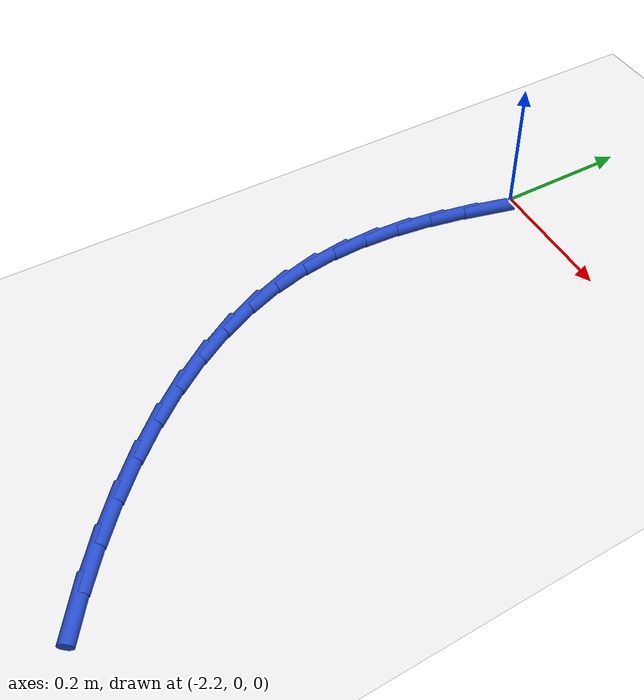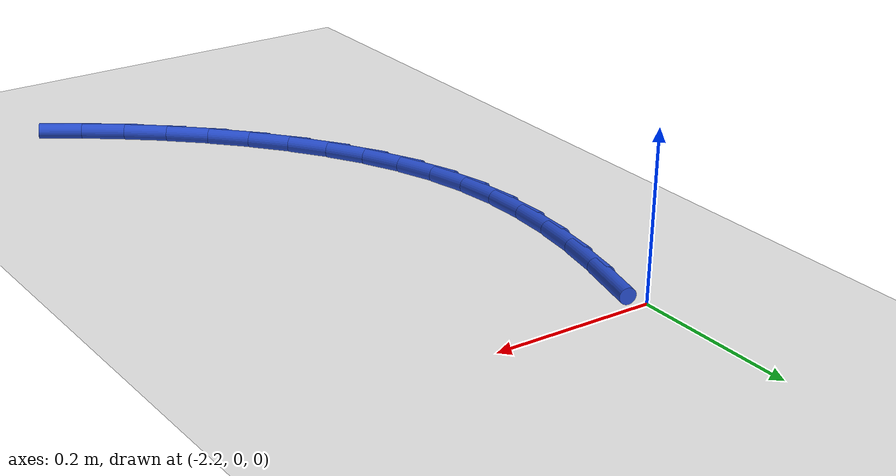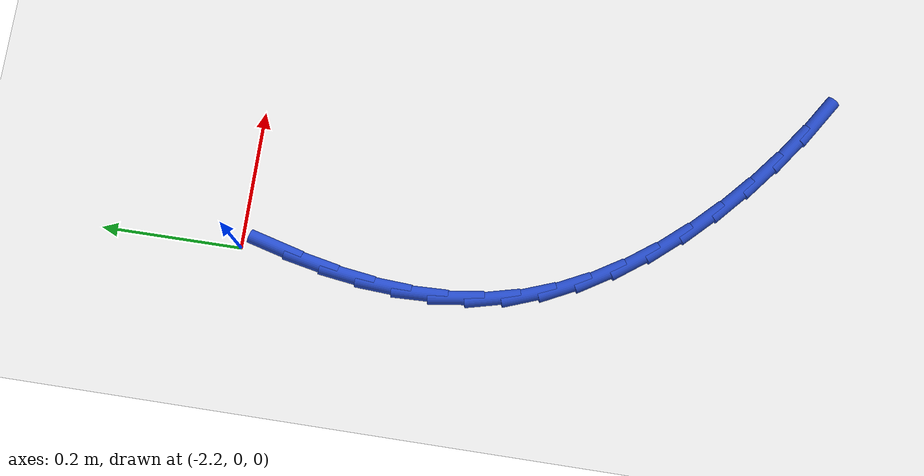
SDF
<sdf version="1.6">
 <world name="default">
  <model name="ground_plane">
   <static>1</static>
   <link name="link">
    <collision name="collision">
     <geometry><plane><normal>0 0 1</normal><size>100 100</size></plane></geometry>
     <surface><friction><ode><mu>100</mu><mu2>50</mu2></ode></friction></surface>
    </collision>
    <visual name="visual">
     <cast_shadows>0</cast_shadows>
     <geometry><plane><normal>0 0 1</normal><size>100 100</size></plane></geometry>
     <material>
      <script><uri>file://media/materials/scripts/gazebo.material</uri><name>Gazebo/WhiteGlow</name></script>
     </material>
    </visual>
   </link>
  </model>
  <model name="line">
   <link name="link_65">
    <pose>-2.191742555782768 -0.04924273896884766 0.01 0 1.57 1.3155007346637595</pose>
    <collision name="collision">
     <geometry><cylinder><radius>0.01</radius><length>0.08</length></cylinder></geometry>
    </collision>
    <visual name="visual">
     <material>
      <script><name>Gazebo/Blue</name><uri>file://media/materials/scripts/gazebo.material</uri></script>
     </material>
     <geometry><cylinder><radius>0.01</radius><length>0.08</length></cylinder></geometry>
    </visual>
   </link>
   <link name="link_66">
    <pose>-2.2056434238205203 -0.10250471372626013 0.01 0 1.57 1.372212796155582</pose>
    <collision name="collision">
     <geometry><cylinder><radius>0.01</radius><length>0.08</length></cylinder></geometry>
    </collision>
    <visual name="visual">
     <material>
      <script><name>Gazebo/Blue</name><uri>file://media/materials/scripts/gazebo.material</uri></script>
     </material>
     <geometry><cylinder><radius>0.01</radius><length>0.08</length></cylinder></geometry>
    </visual>
   </link>
   <link name="link_67">
    <pose>-2.2163112664855062 -0.15551637230218968 0.01 0 1.57 1.4392373012891644</pose>
    <collision name="collision">
     <geometry><cylinder><radius>0.01</radius><length>0.08</length></cylinder></geometry>
    </collision>
    <visual name="visual">
     <material>
      <script><name>Gazebo/Blue</name><uri>file://media/materials/scripts/gazebo.material</uri></script>
     </material>
     <geometry><cylinder><radius>0.01</radius><length>0.08</length></cylinder></geometry>
    </visual>
   </link>
   <link name="link_68">
    <pose>-2.223273109494798 -0.2081287406759454 0.01 0 1.57 1.5173963223222895</pose>
    <collision name="collision">
     <geometry><cylinder><radius>0.01</radius><length>0.08</length></cylinder></geometry>
    </collision>
    <visual name="visual">
     <material>
      <script><name>Gazebo/Blue</name><uri>file://media/materials/scripts/gazebo.material</uri></script>
     </material>
     <geometry><cylinder><radius>0.01</radius><length>0.08</length></cylinder></geometry>
    </visual>
   </link>
   <link name="link_69">
    <pose>-2.2260559785654648 -0.2601928448268387 0.01 0 1.57 -1.5344255090853112</pose>
    <collision name="collision">
     <geometry><cylinder><radius>0.01</radius><length>0.08</length></cylinder></geometry>
    </collision>
    <visual name="visual">
     <material>
      <script><name>Gazebo/Blue</name><uri>file://media/materials/scripts/gazebo.material</uri></script>
     </material>
     <geometry><cylinder><radius>0.01</radius><length>0.08</length></cylinder></geometry>
    </visual>
   </link>
   <link name="link_70">
    <pose>-2.2241868994145784 -0.31155971073418076 0.01 0 1.57 -1.433232231489016</pose>
    <collision name="collision">
     <geometry><cylinder><radius>0.01</radius><length>0.08</length></cylinder></geometry>
    </collision>
    <visual name="visual">
     <material>
      <script><name>Gazebo/Blue</name><uri>file://media/materials/scripts/gazebo.material</uri></script>
     </material>
     <geometry><cylinder><radius>0.01</radius><length>0.08</length></cylinder></geometry>
    </visual>
   </link>
   <link name="link_71">
    <pose>-2.2171928977592095 -0.36208036437728097 0.01 0 1.57 -1.3218785318649253</pose>
    <collision name="collision">
     <geometry><cylinder><radius>0.01</radius><length>0.08</length></cylinder></geometry>
    </collision>
    <visual name="visual">
     <material>
      <script><name>Gazebo/Blue</name><uri>file://media/materials/scripts/gazebo.material</uri></script>
     </material>
     <geometry><cylinder><radius>0.01</radius><length>0.08</length></cylinder></geometry>
    </visual>
   </link>
   <link name="link_72">
    <pose>-2.2046040741165007 -0.4116057180372243 0.01 0 1.57 -1.2085710669426686</pose>
    <collision name="collision">
     <geometry><cylinder><radius>0.01</radius><length>0.08</length></cylinder></geometry>
    </collision>
    <visual name="visual">
     <material>
      <script><name>Gazebo/Blue</name><uri>file://media/materials/scripts/gazebo.material</uri></script>
     </material>
     <geometry><cylinder><radius>0.01</radius><length>0.08</length></cylinder></geometry>
    </visual>
   </link>
   <link name="link_73">
    <pose>-2.1862748686869673 -0.4599746907448817 0.01 0 1.57 -1.1055368342215313</pose>
    <collision name="collision">
     <geometry><cylinder><radius>0.01</radius><length>0.08</length></cylinder></geometry>
    </collision>
    <visual name="visual">
     <material>
      <script><name>Gazebo/Blue</name><uri>file://media/materials/scripts/gazebo.material</uri></script>
     </material>
     <geometry><cylinder><radius>0.01</radius><length>0.08</length></cylinder></geometry>
    </visual>
   </link>
   <link name="link_74">
    <pose>-2.162665479655288 -0.507003802153417 0.01 0 1.57 -1.0134074939973157</pose>
    <collision name="collision">
     <geometry><cylinder><radius>0.01</radius><length>0.08</length></cylinder></geometry>
    </collision>
    <visual name="visual">
     <material>
      <script><name>Gazebo/Blue</name><uri>file://media/materials/scripts/gazebo.material</uri></script>
     </material>
     <geometry><cylinder><radius>0.01</radius><length>0.08</length></cylinder></geometry>
    </visual>
   </link>
   <link name="link_75">
    <pose>-2.134302445851919 -0.5525071188089444 0.01 0 1.57 -0.9310111031431529</pose>
    <collision name="collision">
     <geometry><cylinder><radius>0.01</radius><length>0.08</length></cylinder></geometry>
    </collision>
    <visual name="visual">
     <material>
      <script><name>Gazebo/Blue</name><uri>file://media/materials/scripts/gazebo.material</uri></script>
     </material>
     <geometry><cylinder><radius>0.01</radius><length>0.08</length></cylinder></geometry>
    </visual>
   </link>
   <link name="link_76">
    <pose>-2.1017123061073124 -0.5962987072575755 0.01 0 1.57 -0.8569423562553921</pose>
    <collision name="collision">
     <geometry><cylinder><radius>0.01</radius><length>0.08</length></cylinder></geometry>
    </collision>
    <visual name="visual">
     <material>
      <script><name>Gazebo/Blue</name><uri>file://media/materials/scripts/gazebo.material</uri></script>
     </material>
     <geometry><cylinder><radius>0.01</radius><length>0.08</length></cylinder></geometry>
    </visual>
   </link>
   <link name="link_77">
    <pose>-2.0654215992519225 -0.6381926340454246 0.01 0 1.57 -0.7897575964708752</pose>
    <collision name="collision">
     <geometry><cylinder><radius>0.01</radius><length>0.08</length></cylinder></geometry>
    </collision>
    <visual name="visual">
     <material>
      <script><name>Gazebo/Blue</name><uri>file://media/materials/scripts/gazebo.material</uri></script>
     </material>
     <geometry><cylinder><radius>0.01</radius><length>0.08</length></cylinder></geometry>
    </visual>
   </link>
   <link name="link_78">
    <pose>-2.025956864116204 -0.6780029657186054 0.01 0 1.57 -0.7280693664277532</pose>
    <collision name="collision">
     <geometry><cylinder><radius>0.01</radius><length>0.08</length></cylinder></geometry>
    </collision>
    <visual name="visual">
     <material>
      <script><name>Gazebo/Blue</name><uri>file://media/materials/scripts/gazebo.material</uri></script>
     </material>
     <geometry><cylinder><radius>0.01</radius><length>0.08</length></cylinder></geometry>
    </visual>
   </link>
   <link name="link_79">
    <pose>-1.9838446395306089 -0.7155437688232299 0.01 0 1.57 -0.670575087354875</pose>
    <collision name="collision">
     <geometry><cylinder><radius>0.01</radius><length>0.08</length></cylinder></geometry>
    </collision>
    <visual name="visual">
     <material>
      <script><name>Gazebo/Blue</name><uri>file://media/materials/scripts/gazebo.material</uri></script>
     </material>
     <geometry><cylinder><radius>0.01</radius><length>0.08</length></cylinder></geometry>
    </visual>
   </link>
   <link name="link_80">
    <pose>-1.9396114643255922 -0.7506291099054121 0.01 0 1.57 -0.6160460702228584</pose>
    <collision name="collision">
     <geometry><cylinder><radius>0.01</radius><length>0.08</length></cylinder></geometry>
    </collision>
    <visual name="visual">
     <material>
      <script><name>Gazebo/Blue</name><uri>file://media/materials/scripts/gazebo.material</uri></script>
     </material>
     <geometry><cylinder><radius>0.01</radius><length>0.08</length></cylinder></geometry>
    </visual>
   </link>
   <link name="link_81">
    <pose>-1.8937838773316071 -0.7830730555112653 0.01 0 1.57 -0.5632923508062273</pose>
    <collision name="collision">
     <geometry><cylinder><radius>0.01</radius><length>0.08</length></cylinder></geometry>
    </collision>
    <visual name="visual">
     <material>
      <script><name>Gazebo/Blue</name><uri>file://media/materials/scripts/gazebo.material</uri></script>
     </material>
     <geometry><cylinder><radius>0.01</radius><length>0.08</length></cylinder></geometry>
    </visual>
   </link>
  </model>
 </world>
</sdf>
